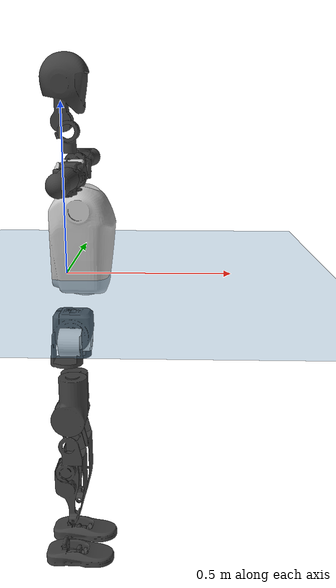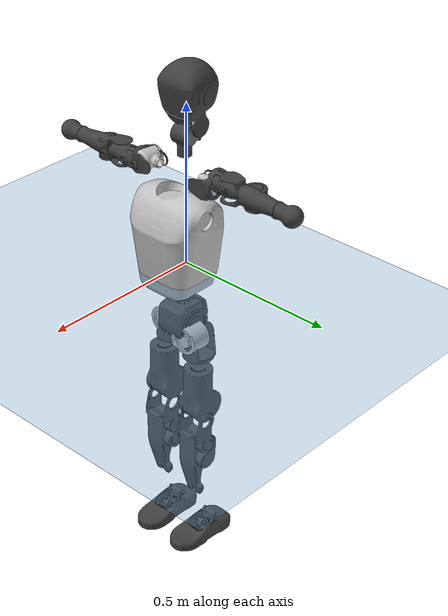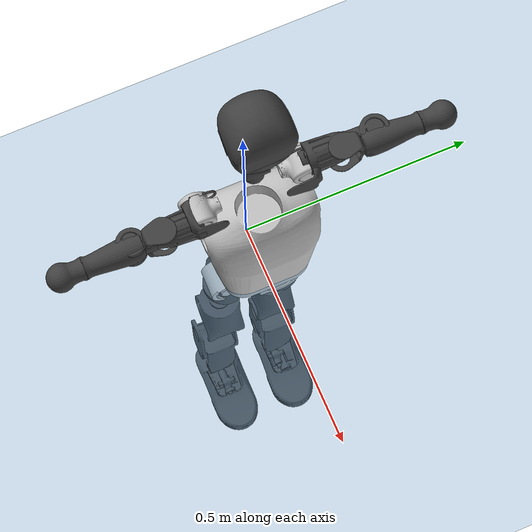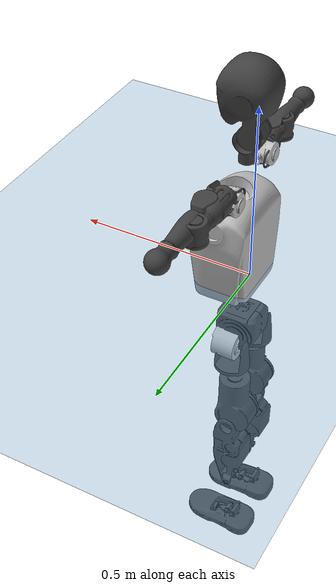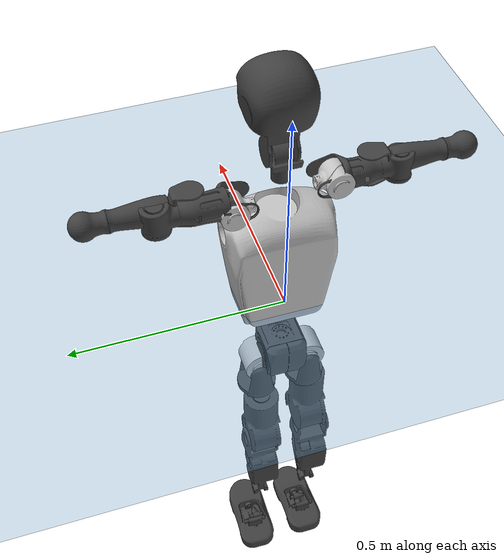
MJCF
<mujoco model="T1">
  <compiler angle="radian" assetdir="assets" balanceinertia="true" inertiafromgeom="false"/>

  <option timestep="0.005" density="1.2" viscosity="2e-05"/>

  <size nkey="1"/>

  <visual>
    <quality shadowsize="8192"/>
    <map shadowclip="0.5"/>
  </visual>

  <default>
    <default class="/">
      <joint armature="0.01" damping="0.01" frictionloss="0.1"/>
      <geom contype="0" conaffinity="0" group="1" solref="-1000 -80"/>
      <site size="0.01 0.005 0.005" group="5"/>
      <general forcelimited="true" biastype="affine" gainprm="25" biasprm="0 -25 -0.6"/>
      <default class="t1">
        <geom rgba="0.25 0.25 0.25 1"/>
        <default class="visual">
          <geom type="mesh" group="2"/>
        </default>
        <default class="collision">
          <geom group="3"/>
        </default>
        <default class="foot">
          <geom size="0.1115 0.05 0.015" type="box" condim="6" group="4" priority="1" solimp="0.015 1 0.015"/>
        </default>
        <default class="reward_collision_sphere">
          <geom group="5" rgba="1 0 0 1"/>
        </default>
      </default>
    </default>
  </default>

  <asset>
    <texture type="skybox" colorspace="auto" name="//unnamed_texture_0" builtin="gradient" rgb1="0.95 0.95 0.95" rgb2="0.95 0.95 0.95" width="100" height="600"/>
    <texture type="2d" colorspace="auto" name="texplane" builtin="checker" rgb1="0.345 0.575 0.748" rgb2="0.345 0.575 0.748" markrgb="1 1 1" width="512" height="512"/>
    <material name="MatPlane" class="/" texture="texplane" texuniform="true" texrepeat="2 2" specular="0.9"/>
    <mesh name="Trunk" class="/" file="Trunk.stl"/>
    <mesh name="H1" class="/" file="H1.stl"/>
    <mesh name="H2" class="/" file="H2.stl"/>
    <mesh name="AL1" class="/" file="AL1.stl"/>
    <mesh name="AL2" class="/" file="AL2.stl"/>
    <mesh name="AL3" class="/" file="AL3.stl"/>
    <mesh name="left_hand_link" class="/" file="left_hand_link.stl"/>
    <mesh name="AR1" class="/" file="AR1.stl"/>
    <mesh name="AR2" class="/" file="AR2.stl"/>
    <mesh name="AR3" class="/" file="AR3.stl"/>
    <mesh name="right_hand_link" class="/" file="right_hand_link.stl"/>
    <mesh name="Waist" class="/" file="Waist.stl"/>
    <mesh name="Hip_Pitch_Left" class="/" file="Hip_Pitch_Left.stl"/>
    <mesh name="Hip_Roll_Left" class="/" file="Hip_Roll_Left.stl"/>
    <mesh name="Hip_Yaw_Left" class="/" file="Hip_Yaw_Left.stl"/>
    <mesh name="Shank_Left" class="/" file="Shank_Left.stl"/>
    <mesh name="Ankle_Cross_Left" class="/" file="Ankle_Cross_Left.stl"/>
    <mesh name="left_foot_link" class="/" file="left_foot_link.stl"/>
    <mesh name="Hip_Pitch_Right" class="/" file="Hip_Pitch_Right.stl"/>
    <mesh name="Hip_Roll_Right" class="/" file="Hip_Roll_Right.stl"/>
    <mesh name="Hip_Yaw_Right" class="/" file="Hip_Yaw_Right.stl"/>
    <mesh name="Shank_Right" class="/" file="Shank_Right.stl"/>
    <mesh name="Ankle_Cross_Right" class="/" file="Ankle_Cross_Right.stl"/>
    <mesh name="right_foot_link" class="/" file="right_foot_link.stl"/>
  </asset>

  <worldbody>
    <geom name="floor" class="/" size="100 100 0.125" type="plane" group="0" material="MatPlane"/>
    <light name="toplight_shadow" class="/" pos="0 0 5" dir="0.0990148 0.0990148 -0.990148" type="directional" ambient="0.04 0.04 0.04" diffuse="0.55 0.55 0.55" specular="0.12 0.12 0.12"/>
    <light name="toplight_fill" class="/" pos="0 0 5" dir="0.0990148 0.0990148 -0.990148" type="directional" castshadow="false" ambient="0.04 0.04 0.04" diffuse="0.3 0.3 0.3" specular="0.08 0.08 0.08"/>
    <body name="trunk" childclass="t1" pos="-0.00471141 0.00638016 -0.0135403" quat="0.999988 0.000674701 0.0046779 -0.00141943">
      <inertial pos="0.0311097 0.0128047 0.145856" quat="0.999979 0.00143336 0.00181516 0.00608601" mass="7.07071" diaginertia="0.00034118 0.00571233 0.370854"/>
      <joint name="//unnamed_joint_0" type="free" armature="0" damping="0" frictionloss="0"/>
      <geom name="//unnamed_geom_1" class="visual" rgba="0.76 0.76 0.76 1" mesh="Trunk"/>
      <geom name="//unnamed_geom_2" class="collision" size="0.0599494 0.0799325 0.119899" pos="0.0202223 0 0.177845" type="box"/>
      <geom name="//unnamed_geom_3" class="reward_collision_sphere" size="0.0919224" pos="0.0202223 0 0.148204"/>
      <geom name="//unnamed_geom_4" class="reward_collision_sphere" size="0.0119899" pos="0.0202223 0.0492062 0"/>
      <geom name="//unnamed_geom_5" class="reward_collision_sphere" size="0.0119899" pos="0.0202223 -0.0492062 0"/>
      <geom name="//unnamed_geom_6" class="reward_collision_sphere" size="0.0119899" pos="0.0202223 0.061942 0.266767"/>
      <geom name="//unnamed_geom_7" class="reward_collision_sphere" size="0.0119899" pos="0.0202223 -0.061942 0.266767"/>
      <site name="imu" pos="0.0888049 -0.0908509 0.0876477" size="0.00799325"/>
      <camera name="track" pos="0 -1.15779 0" quat="0.707107 0.707107 0 0" mode="trackcom"/>
      <camera name="ego_camera" pos="0.0411187 0 0.622456" quat="-0.5 -0.5 0.5 0.5"/>
      <body name="H1" pos="0.0205515 0.00640203 0.368966" quat="0.999962 0.000537083 -0.00572283 0.00655405">
        <inertial pos="-0.000892694 -0.00710352 0.0755858" quat="0.762571 0.0196724 0.00641106 0.646574" mass="0.138267" diaginertia="9.92714e-07 1.02815e-05 0.000880908"/>
        <joint name="AAHead_yaw" pos="0 0 0" axis="0.0497572 0.0356932 0.998123" stiffness="0.0373129" range="-1.69262 1.64315" armature="1.58464e-05" damping="0.0739281" frictionloss="0.0665767"/>
        <geom name="//unnamed_geom_8" class="visual" mesh="H1"/>
        <body name="H2" pos="-0.0195095 0.0124359 0.0890313" quat="0.999983 0.00372805 -0.00424254 0.00107594">
          <inertial pos="0.00549164 -0.006554 0.150921" quat="0.990866 0.107832 -0.0681185 -0.0437827" mass="0.343723" diaginertia="8.1274e-06 0.000127774 0.010106"/>
          <joint name="Head_pitch" pos="0 0 0" axis="-0.0692573 -0.997599 -0.000588321" range="-1.07745 0.6017" armature="0.00475344" damping="0.0544784" frictionloss="0.104451"/>
          <geom name="//unnamed_geom_9" class="visual" mesh="H2"/>
          <geom name="//unnamed_geom_10" class="collision" size="0.063946" pos="0.00337039 0 0.163024"/>
          <geom name="//unnamed_geom_11" class="reward_collision_sphere" size="0.0719392" pos="0.00674077 0 0.148204"/>
        </body>
      </body>
      <body name="AL1" pos="0.0168117 0.0640312 0.315772" quat="0.999972 -0.0059377 0.00349777 -0.00307878">
        <inertial pos="0.00306849 0.0102113 -0.00230329" quat="0.513616 0.480829 -0.486141 0.518334" mass="0.250997" diaginertia="4.94251e-06 9.34706e-05 0.00233209"/>
        <joint name="Left_Shoulder_Pitch" pos="0 0 0" axis="0.0158879 0.999805 -0.0117464" stiffness="0.0491506" range="-3.51627 1.33609" armature="0.0110984" damping="0" frictionloss="0.132071"/>
        <geom name="//unnamed_geom_12" class="visual" rgba="0.76 0.76 0.76 1" mesh="AL1"/>
        <body name="AL2" pos="0.0154689 0.0156936 0.00170869" quat="1 0.000110138 -3.97094e-06 -8.37186e-05">
          <inertial pos="-0.00310416 0.0302503 -0.0164747" quat="0.496572 0.501426 -0.475291 0.525439" mass="0.0539386" diaginertia="1.49575e-06 2.25575e-05 0.000893799"/>
          <joint name="Left_Shoulder_Roll" pos="0 0 0" axis="-0.999742 -0.0124558 -0.0190206" range="-1.92352 1.39185" armature="0.0142389" damping="0.0707398" frictionloss="0.0739275"/>
          <geom name="//unnamed_geom_13" class="visual" mesh="AL2"/>
          <body name="AL3" pos="-0.0131941 0.0396679 0.0160763" quat="0.999995 -0.0025023 0.000620362 -0.00181792">
            <inertial pos="-0.0132417 0.0499145 -0.00396297" quat="0.678567 0.733282 -0.0356157 -0.024001" mass="0.628724" diaginertia="7.35044e-05 0.000775776 0.00611218"/>
            <joint name="Left_Elbow_Pitch" pos="0 0 0" axis="0.0516619 -0.995561 0.0786677" stiffness="0.0916787" range="-2.62572 1.9631" armature="0.0156332" damping="0.105393" frictionloss="0.136187"/>
            <geom name="//unnamed_geom_14" class="visual" mesh="AL3"/>
            <geom name="//unnamed_geom_15" class="collision" size="0.0239797 0.0599494" pos="0 0.0289448 0" quat="0.707105 0.707108 0 0" type="cylinder"/>
            <geom name="//unnamed_geom_16" class="reward_collision_sphere" size="0.0287757"/>
            <body name="left_hand_link" pos="0.0153055 0.0705429 0.00499475" quat="0.999985 0.00362015 0.00162739 -0.00387986">
              <inertial pos="0.00657747 0.0567457 -0.0112354" quat="0.706039 0.708165 0.0009176 -0.00305365" mass="0.163917" diaginertia="3.04006e-05 0.000449312 0.00153183"/>
              <joint name="Left_Elbow_Yaw" pos="0 0 0" axis="-0.0047614 -0.0669122 0.997748" stiffness="0.0421294" range="-2.2146 -0.103304" armature="9.74632e-05" damping="0" frictionloss="0.129703"/>
              <geom name="//unnamed_geom_17" class="visual" mesh="left_hand_link"/>
              <geom name="//unnamed_geom_18" class="collision" size="0.0239797 0.0699409" pos="0 0.0752566 0" quat="0.707105 0.707108 0 0" type="cylinder"/>
              <geom name="//unnamed_geom_19" class="reward_collision_sphere" size="0.0399662"/>
              <geom name="//unnamed_geom_20" class="reward_collision_sphere" size="0.0279764" pos="0 0.0636786 0"/>
              <geom name="//unnamed_geom_21" class="reward_collision_sphere" size="0.0279764" pos="0 0.124463 0"/>
            </body>
          </body>
        </body>
      </body>
      <body name="AR1" pos="0.0350818 -0.0735257 0.321156" quat="0.999995 0.000447474 0.002932 -0.00102764">
        <inertial pos="0.0170456 -0.0362794 -0.0141174" quat="0.466711 0.517034 -0.567018 0.439713" mass="0.21848" diaginertia="6.4287e-06 9.10344e-05 0.0015378"/>
        <joint name="Right_Shoulder_Pitch" pos="0 0 0" axis="0.0158266 -0.99986 0.00548986" stiffness="0.00612607" range="-1.22574 3.27072" armature="0.00700377" damping="0.00943211" frictionloss="0.135817"/>
        <geom name="//unnamed_geom_22" class="visual" rgba="0.76 0.76 0.76 1" mesh="AR1"/>
        <body name="AR2" pos="0.00852621 -0.017684 -0.00195289" quat="0.999989 0.00212714 -0.00189863 -0.00370851">
          <inertial pos="-0.00750259 -0.0283952 -0.0109954" quat="0.506892 0.493485 -0.510847 0.488435" mass="0.0877562" diaginertia="1.64365e-06 1.79429e-05 0.00107825"/>
          <joint name="Right_Shoulder_Roll" pos="0 0 0" axis="-0.998711 -0.0424302 -0.0278658" stiffness="0.0306583" range="-1.97434 1.20662" armature="0.0130976" damping="0" frictionloss="0.0530569"/>
          <geom name="//unnamed_geom_23" class="visual" mesh="AR2"/>
          <body name="AR3" pos="0.005629 -0.0282665 -0.00587509" quat="1 -9.92076e-05 0.00066473 0.000617718">
            <inertial pos="0.00145266 -0.0319332 -0.015106" quat="0.657294 0.753397 0.0116992 -0.0148199" mass="0.452103" diaginertia="4.62977e-05 0.000947215 0.00348592"/>
            <joint name="Right_Elbow_Pitch" pos="0 0 0" axis="-0.00187136 0.99846 0.0554474" range="-2.52454 2.55663" armature="0.00714881" damping="0" frictionloss="0.0746516"/>
            <geom name="//unnamed_geom_24" class="visual" mesh="AR3"/>
            <geom name="//unnamed_geom_25" class="collision" size="0.0239797 0.0599494" pos="0 -0.0289448 0" quat="0.707105 0.707108 0 0" type="cylinder"/>
            <geom name="//unnamed_geom_26" class="reward_collision_sphere" size="0.0287757"/>
            <body name="right_hand_link" pos="0.00608294 -0.0820588 0.00789544" quat="0.999985 0.00346178 -0.00156487 0.00385647">
              <inertial pos="-0.00342982 -0.0567052 0.0162645" quat="0.712026 0.70165 -0.0130283 -0.0231401" mass="0.195439" diaginertia="3.32618e-05 0.0005496 0.00188386"/>
              <joint name="Right_Elbow_Yaw" pos="0 0 0" axis="0.0148995 -0.0262449 0.999545" range="-0.129095 2.37643" armature="0.00651929" damping="0.0471331" frictionloss="0.0256247"/>
              <geom name="//unnamed_geom_27" class="visual" mesh="right_hand_link"/>
              <geom name="//unnamed_geom_28" class="collision" size="0.0239797 0.0699409" pos="0 -0.0752566 0" quat="0.707105 0.707108 0 0" type="cylinder"/>
              <geom name="//unnamed_geom_29" class="reward_collision_sphere" size="0.0399662"/>
              <geom name="//unnamed_geom_30" class="reward_collision_sphere" size="0.0279764" pos="0 -0.0636786 0"/>
              <geom name="//unnamed_geom_31" class="reward_collision_sphere" size="0.0279764" pos="0 -0.124463 0"/>
            </body>
          </body>
        </body>
      </body>
      <body name="Waist" pos="0.0215307 -0.00654276 -0.173799" quat="0.99998 -0.000688503 -0.00390265 -0.00484343">
        <inertial pos="0.0207619 -0.0142528 0.0123123" quat="0.978504 0.0118031 -0.205877 0.00220979" mass="1.63871" diaginertia="3.21952e-05 0.000425594 0.0325097"/>
        <joint name="Waist" pos="0 0 0" axis="-0.0833959 0.0346535 0.995914" range="-1.75848 1.76297" armature="0.0125407" damping="0" frictionloss="0.0934506"/>
        <geom name="//unnamed_geom_32" class="visual" mesh="Waist"/>
        <body name="Hip_Pitch_Left" pos="0.0168985 0.0488653 -0.0140679" quat="0.999951 -0.00152421 -0.0097416 -0.000455004">
          <inertial pos="0.015428 -0.0221024 -0.023268" quat="0.978108 0.207445 0.00519674 0.0156092" mass="0.55032" diaginertia="9.86039e-06 0.000128514 0.00853921"/>
          <joint name="Left_Hip_Pitch" pos="0 0 0" axis="0.02176 0.998694 0.0462209" range="-1.63811 1.47706" armature="0.0146751" damping="0.0244704" frictionloss="0.00677461"/>
          <geom name="//unnamed_geom_33" class="visual" rgba="0.76 0.76 0.76 1" mesh="Hip_Pitch_Left"/>
          <body name="Hip_Roll_Left" pos="-0.0195139 0.0140859 -0.0100949" quat="0.999952 -0.00488373 0.00209638 -0.00822147">
            <inertial pos="-0.0126725 0.0107271 -0.0621544" quat="0.688732 0.00689506 -0.00675455 0.724952" mass="0.204338" diaginertia="7.37078e-06 8.22054e-05 0.00343029"/>
            <joint name="Left_Hip_Roll" pos="0 0 0" axis="-0.999231 0.0222529 0.0322794" range="-1.56489 0.11665" armature="0.00312706" damping="0" frictionloss="0.0750501"/>
            <geom name="//unnamed_geom_34" class="visual" mesh="Hip_Roll_Left"/>
            <geom name="//unnamed_geom_35" class="reward_collision_sphere" size="0.0439629"/>
            <body name="Hip_Yaw_Left" pos="-0.0105413 -0.00935608 -0.133376" quat="0.999993 0.00200537 -0.00213217 -0.00245179">
              <inertial pos="-0.000906273 -0.0195221 -0.149604" quat="0.723031 -0.0519662 -0.0420606 0.687573" mass="1.28202" diaginertia="0.000130421 0.00191663 0.0201396"/>
              <joint name="Left_Hip_Yaw" pos="0 0 0" axis="-0.0453863 0.0164718 -0.998834" range="-0.941339 1.07487" armature="0.00873569" damping="0.0345975" frictionloss="0.0261509"/>
              <geom name="//unnamed_geom_36" class="visual" mesh="Hip_Yaw_Left"/>
              <geom name="//unnamed_geom_37" class="collision" size="0.0399662 0.063946" type="cylinder"/>
              <body name="Shank_Left" pos="-0.000710843 -0.000595664 -0.18577" quat="0.999971 0.00298858 0.00507899 0.00481976">
                <inertial pos="-0.0053982 0.0140421 -0.194773" quat="0.998837 -0.0376521 0.0278636 0.0114052" mass="1.05888" diaginertia="0.000170231 0.00209357 0.0145561"/>
                <joint name="Left_Knee_Pitch" pos="0 0 0" axis="-0.0398454 0.998937 -0.023195" range="0.0619587 2.66126" armature="0.00141277" damping="0.0595337" frictionloss="0.0763615"/>
                <geom name="//unnamed_geom_38" class="visual" mesh="Shank_Left"/>
                <geom name="//unnamed_geom_39" class="collision" size="0.0399662 0.0599494" pos="0 0 -0.177845" type="cylinder"/>
                <geom name="//unnamed_geom_40" class="reward_collision_sphere" size="0.0519561"/>
                <body name="Ankle_Cross_Left" pos="-0.0116118 0.0151174 -0.416413" quat="0.999986 -0.00270135 -0.00380824 -0.00265638">
                  <inertial pos="0.00551104 -0.00378769 -0.0212219" quat="0.384694 0.572486 0.585587 0.425862" mass="0.0387657" diaginertia="9.18781e-08 1.4809e-06 7.40008e-05"/>
                  <joint name="Left_Ankle_Pitch" pos="0 0 0" axis="0.00336468 0.999829 -0.0181777" range="-0.509802 -0.00888095" armature="0.00316841" damping="0.102723" frictionloss="0.028985"/>
                  <geom name="//unnamed_geom_41" class="visual" mesh="Ankle_Cross_Left"/>
                  <body name="left_foot_link" pos="0.0123147 0.0122279 -0.00135446" quat="0.999959 -0.00117599 -0.00242618 -0.00861713">
                    <inertial pos="0.00807164 -0.00766973 -0.0186706" quat="-0.0624012 0.596103 -0.0301068 0.799913" mass="0.253256" diaginertia="1.00159e-05 0.00011022 0.00892004"/>
                    <joint name="Left_Ankle_Roll" pos="0 0 0" axis="-0.996738 -0.00468995 -0.0805685" range="-0.536202 0.0722782" armature="0.00761335" damping="0" frictionloss="0.000244179"/>
                    <geom name="//unnamed_geom_42" class="visual" mesh="left_foot_link"/>
                    <geom name="left_foot" class="foot" size="0.0667991 0.0535799 0.0030531" pos="0.00337039 0 -0.0222306"/>
                    <geom name="//unnamed_geom_44" class="reward_collision_sphere" size="0.0415649" pos="0.00337039 0 -0.0222306"/>
                    <geom name="//unnamed_geom_45" class="reward_collision_sphere" size="0.0239797" pos="0.0320187 -0.0133146 -0.0222306"/>
                    <geom name="//unnamed_geom_46" class="reward_collision_sphere" size="0.0239797" pos="-0.0235927 -0.0133146 -0.0222306"/>
                    <site name="left_foot" class="foot" pos="0.00337039 0 -0.0222306" size="0.00799325"/>
                  </body>
                </body>
              </body>
            </body>
          </body>
        </body>
        <body name="Hip_Pitch_Right" pos="-4.7462e-05 -0.0569789 0.00244123" quat="0.999998 0.001203 0.00136183 -0.000871019">
          <inertial pos="0.0107924 0.00415783 -0.0154415" quat="0.976458 -0.20277 -0.0675644 0.0291546" mass="0.728283" diaginertia="9.84601e-06 0.000100309 0.0123793"/>
          <joint name="Right_Hip_Pitch" pos="0 0 0" axis="0.0327877 -0.999192 0.0232331" range="-1.67025 2.04245" armature="0.00306244" damping="0" frictionloss="0.0674201"/>
          <geom name="//unnamed_geom_47" class="visual" rgba="0.76 0.76 0.76 1" mesh="Hip_Pitch_Right"/>
          <body name="Hip_Roll_Right" pos="-0.0123879 6.0868e-05 -0.012576" quat="0.999994 -0.000828145 -0.00209201 -0.00255014">
            <inertial pos="0.00102243 -0.0135872 -0.0819087" quat="0.662773 0.0107755 0.0311574 0.748094" mass="0.21026" diaginertia="6.43702e-06 8.34004e-05 0.00398665"/>
            <joint name="Right_Hip_Roll" pos="0 0 0" axis="-0.999155 -0.0070336 -0.0404909" stiffness="0.0982844" range="-0.056405 1.62387" armature="0.0135585" damping="0" frictionloss="0.0684721"/>
            <geom name="//unnamed_geom_48" class="visual" mesh="Hip_Roll_Right"/>
            <geom name="//unnamed_geom_49" class="reward_collision_sphere" size="0.0439629"/>
            <body name="Hip_Yaw_Right" pos="0.0163559 -0.0191398 -0.114777" quat="1 -8.00035e-05 -0.0007633 3.35185e-05">
              <inertial pos="0.012487 0.00251046 -0.113635" quat="0.711187 -0.0701275 -0.0998415 0.692334" mass="0.805291" diaginertia="9.61836e-05 0.00138075 0.0155428"/>
              <joint name="Right_Hip_Yaw" pos="0 0 0" axis="0.0205636 -0.028502 -0.999382" stiffness="0.0454112" range="-1.33096 1.2491" armature="0.00545497" damping="0.0430706" frictionloss="0.0864959"/>
              <geom name="//unnamed_geom_50" class="visual" mesh="Hip_Yaw_Right"/>
              <geom name="//unnamed_geom_51" class="collision" size="0.0399662 0.063946" type="cylinder"/>
              <body name="Shank_Right" pos="-0.0116477 -0.0145625 -0.213016" quat="0.999999 -0.000314323 0.0013249 -0.00050321">
                <inertial pos="-0.021889 -0.00669852 -0.170939" quat="0.997349 -0.0174923 -0.0600466 0.0371912" mass="1.28439" diaginertia="0.000181165 0.00216516 0.0172017"/>
                <joint name="Right_Knee_Pitch" pos="0 0 0" axis="-0.0739174 -0.997162 0.0142567" range="-2.25005 -0.157893" armature="0.00339243" damping="0.0655196" frictionloss="0.0199183"/>
                <geom name="//unnamed_geom_52" class="visual" mesh="Shank_Right"/>
                <geom name="//unnamed_geom_53" class="collision" size="0.0399662 0.0599494" pos="0 0 -0.177845" type="cylinder"/>
                <geom name="//unnamed_geom_54" class="reward_collision_sphere" size="0.0519561"/>
                <body name="Ankle_Cross_Right" pos="0.0117985 0.0183666 -0.414161" quat="0.999961 0.000789575 0.00878157 0.000642444">
                  <inertial pos="0.00619158 0.00243915 -0.00527843" quat="0.431212 0.562365 0.556545 0.433658" mass="0.0368075" diaginertia="1.59202e-07 1.79393e-06 9.48504e-05"/>
                  <joint name="Right_Ankle_Pitch" pos="0 0 0" axis="-0.0359901 -0.998675 -0.036793" range="-0.121735 0.50125" armature="0.0101191" damping="0" frictionloss="0.0796533"/>
                  <geom name="//unnamed_geom_55" class="visual" mesh="Ankle_Cross_Right"/>
                  <body name="right_foot_link" pos="-0.00465918 0.000250754 -0.00461276" quat="0.999971 0.00292279 -0.00407569 0.00572801">
                    <inertial pos="0.0149737 0.00734206 -0.0116567" quat="-0.0349683 0.604324 0.0219127 0.795669" mass="0.341312" diaginertia="1.41505e-05 0.000178977 0.0172939"/>
                    <joint name="Right_Ankle_Roll" pos="0 0 0" axis="-0.999781 -0.0178657 0.0108888" range="-0.689964 0.671297" armature="0.00475711" damping="0" frictionloss="0.0479106"/>
                    <geom name="//unnamed_geom_56" class="visual" mesh="right_foot_link"/>
                    <geom name="right_foot" class="foot" size="0.0820762 0.050623 0.0142978" pos="0.00337039 0 -0.0222306"/>
                    <geom name="//unnamed_geom_58" class="reward_collision_sphere" size="0.031973"/>
                    <geom name="//unnamed_geom_59" class="reward_collision_sphere" size="0.0239797" pos="0.00337039 0 -0.0222306"/>
                    <geom name="//unnamed_geom_60" class="reward_collision_sphere" size="0.0239797" pos="0.0320187 0.0133146 -0.0222306"/>
                    <geom name="//unnamed_geom_61" class="reward_collision_sphere" size="0.0239797" pos="-0.0235927 0.0133146 -0.0222306"/>
                    <site name="right_foot" class="foot" pos="0.00337039 0 -0.0222306" size="0.00799325"/>
                  </body>
                </body>
              </body>
            </body>
          </body>
        </body>
      </body>
    </body>
  </worldbody>

  <contact>
    <pair class="/" geom1="floor" geom2="left_foot" name="//unnamed_contact_0"/>
    <pair class="/" geom1="floor" geom2="right_foot" name="//unnamed_contact_1"/>
  </contact>

  <actuator>
    <general name="AAHead_yaw" class="/" joint="AAHead_yaw" forcerange="-7.53401 7.53401" gainprm="28.899" biasprm="0 -28.899 -0.483741"/>
    <general name="Head_pitch" class="/" joint="Head_pitch" forcerange="-3.88226 3.88226" gainprm="28.899" biasprm="0 -28.899 -0.483741"/>
    <general name="Left_Shoulder_Pitch" class="/" joint="Left_Shoulder_Pitch" forcerange="-11.0261 11.0261" gainprm="28.899" biasprm="0 -28.899 -0.483741"/>
    <general name="Left_Shoulder_Roll" class="/" joint="Left_Shoulder_Roll" forcerange="-20.9248 20.9248" gainprm="28.899" biasprm="0 -28.899 -0.483741"/>
    <general name="Left_Elbow_Pitch" class="/" joint="Left_Elbow_Pitch" forcerange="-24.2826 24.2826" gainprm="28.899" biasprm="0 -28.899 -0.483741"/>
    <general name="Left_Elbow_Yaw" class="/" joint="Left_Elbow_Yaw" forcerange="-5.42527 5.42527" gainprm="28.899" biasprm="0 -28.899 -0.483741"/>
    <general name="Right_Shoulder_Pitch" class="/" joint="Right_Shoulder_Pitch" forcerange="-5.13507 5.13507" gainprm="28.899" biasprm="0 -28.899 -0.483741"/>
    <general name="Right_Shoulder_Roll" class="/" joint="Right_Shoulder_Roll" forcerange="-19.982 19.982" gainprm="28.899" biasprm="0 -28.899 -0.483741"/>
    <general name="Right_Elbow_Pitch" class="/" joint="Right_Elbow_Pitch" forcerange="-14.2947 14.2947" gainprm="28.899" biasprm="0 -28.899 -0.483741"/>
    <general name="Right_Elbow_Yaw" class="/" joint="Right_Elbow_Yaw" forcerange="-12.7695 12.7695" gainprm="28.899" biasprm="0 -28.899 -0.483741"/>
    <general name="Waist" class="/" joint="Waist" forcerange="-28.7841 28.7841" gainprm="28.899" biasprm="0 -28.899 -0.483741"/>
    <general name="Left_Hip_Pitch" class="/" joint="Left_Hip_Pitch" forcerange="-50.0189 50.0189" gainprm="28.899" biasprm="0 -28.899 -0.483741"/>
    <general name="Left_Hip_Roll" class="/" joint="Left_Hip_Roll" forcerange="-8.50735 8.50735" gainprm="28.899" biasprm="0 -28.899 -0.483741"/>
    <general name="Left_Hip_Yaw" class="/" joint="Left_Hip_Yaw" forcerange="-40.5909 40.5909" gainprm="28.899" biasprm="0 -28.899 -0.483741"/>
    <general name="Left_Knee_Pitch" class="/" joint="Left_Knee_Pitch" forcerange="-80.9125 80.9125" gainprm="28.899" biasprm="0 -28.899 -0.483741"/>
    <general name="Left_Ankle_Pitch" class="/" joint="Left_Ankle_Pitch" forcerange="-13.9879 13.9879" gainprm="28.899" biasprm="0 -28.899 -0.483741"/>
    <general name="Left_Ankle_Roll" class="/" joint="Left_Ankle_Roll" forcerange="-11.4425 11.4425" gainprm="28.899" biasprm="0 -28.899 -0.483741"/>
    <general name="Right_Hip_Pitch" class="/" joint="Right_Hip_Pitch" forcerange="-23.6842 23.6842" gainprm="28.899" biasprm="0 -28.899 -0.483741"/>
    <general name="Right_Hip_Roll" class="/" joint="Right_Hip_Roll" forcerange="-27.1265 27.1265" gainprm="28.899" biasprm="0 -28.899 -0.483741"/>
    <general name="Right_Hip_Yaw" class="/" joint="Right_Hip_Yaw" forcerange="-13.374 13.374" gainprm="28.899" biasprm="0 -28.899 -0.483741"/>
    <general name="Right_Knee_Pitch" class="/" joint="Right_Knee_Pitch" forcerange="-50.4491 50.4491" gainprm="28.899" biasprm="0 -28.899 -0.483741"/>
    <general name="Right_Ankle_Pitch" class="/" joint="Right_Ankle_Pitch" forcerange="-25.6823 25.6823" gainprm="28.899" biasprm="0 -28.899 -0.483741"/>
    <general name="Right_Ankle_Roll" class="/" joint="Right_Ankle_Roll" forcerange="-12.1011 12.1011" gainprm="28.899" biasprm="0 -28.899 -0.483741"/>
  </actuator>

  <sensor>
    <gyro site="imu" name="imu_angular_velocity"/>
    <velocimeter site="imu" name="imu_linear_velocity"/>
    <framelinvel objtype="site" objname="left_foot" name="left_foot_global_linear_velocity"/>
    <framelinvel objtype="site" objname="right_foot" name="right_foot_global_linear_velocity"/>
  </sensor>

  <keyframe>
    <key name="home" qpos="0 0 0.6385 1 0 0 0 0 0 0 1.4 0 -0.4 0 -1.4 0 0.4 0 -0.4 0 0 0.8 -0.4 0 0.4 0 0 -0.8 0.4 0"/>
  </keyframe>
</mujoco>
